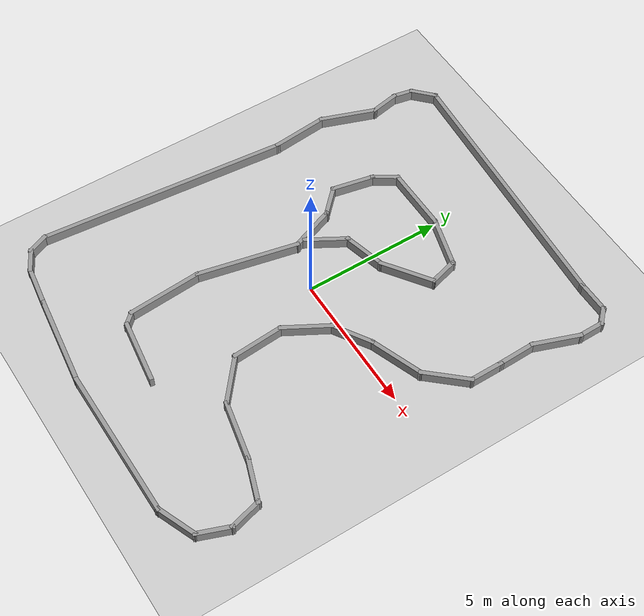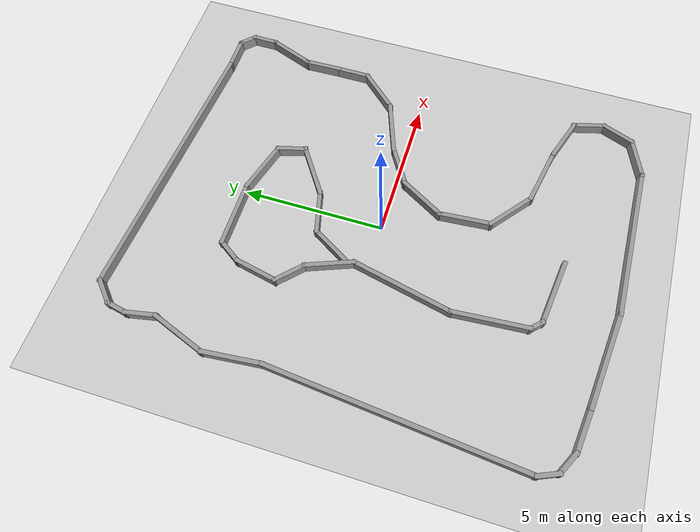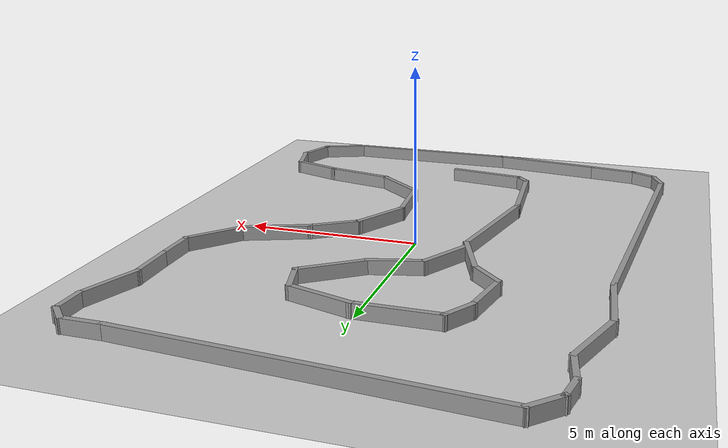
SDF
<?xml version="1.0"?>
<sdf version="1.4">
  <world name="carollo_track_v1">
    <include>
      <uri>model://sim_pkg/models/f1tenth_plane</uri>
      <name>track</name>
      <pose>0 -10 0 0 0 0</pose>
    </include>
    <include>
      <uri>model://sun</uri>
      <pose>0 0 10 0 0 0</pose>
      <name>sun</name>
    </include>
    <include>
      <uri>model://sim_pkg/models/f1_tenth_easy_map</uri>
      <name>walls</name>
      <pose>0 0 0 0 0 0</pose>
    </include>
  </world>
</sdf>
